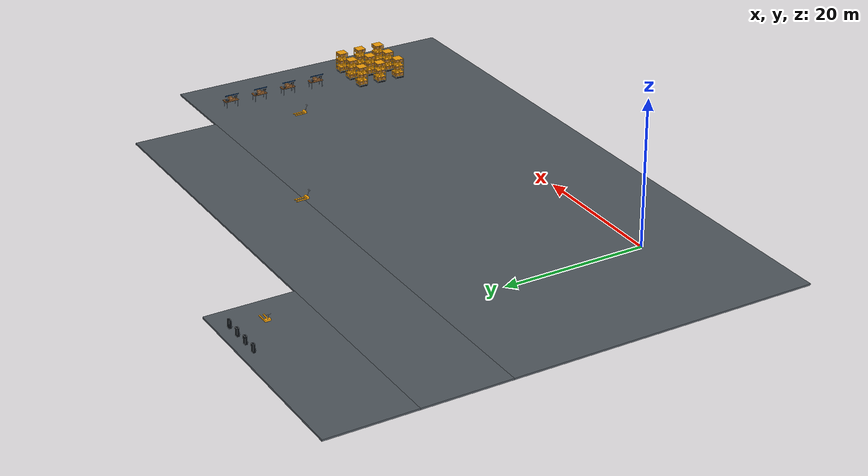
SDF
<sdf version="1.10">
 <world name="swarmroute_warehouse">
  <model name="warehouse_floor_0">
   <static>true</static>
   <link name="structure">
    <visual name="slab">
     <pose>27 9 -0.12 0 0 0</pose>
     <geometry><box><size>90 42 0.24</size></box></geometry>
     <material>
      <diffuse>0.32 0.35 0.38 1</diffuse>
      <ambient>0.224 0.245 0.266 1</ambient>
      <specular>.35 .4 .45 1</specular>
     </material>
    </visual>
    <collision name="slab_collision">
     <pose>27 9 -0.12 0 0 0</pose>
     <geometry><box><size>90 42 0.24</size></box></geometry>
    </collision>
   </link>
  </model>
  <model name="warehouse_floor_1">
   <static>true</static>
   <link name="structure">
    <visual name="slab">
     <pose>21 36 -0.12 0 0 0</pose>
     <geometry><box><size>78 12 0.24</size></box></geometry>
     <material>
      <diffuse>0.32 0.35 0.38 1</diffuse>
      <ambient>0.224 0.245 0.266 1</ambient>
      <specular>.35 .4 .45 1</specular>
     </material>
    </visual>
    <collision name="slab_collision">
     <pose>21 36 -0.12 0 0 0</pose>
     <geometry><box><size>78 12 0.24</size></box></geometry>
    </collision>
   </link>
  </model>
  <model name="warehouse_floor_2">
   <static>true</static>
   <link name="structure">
    <visual name="slab">
     <pose>-3 48 -0.12 0 0 0</pose>
     <geometry><box><size>30 12 0.24</size></box></geometry>
     <material>
      <diffuse>0.32 0.35 0.38 1</diffuse>
      <ambient>0.224 0.245 0.266 1</ambient>
      <specular>.35 .4 .45 1</specular>
     </material>
    </visual>
    <collision name="slab_collision">
     <pose>-3 48 -0.12 0 0 0</pose>
     <geometry><box><size>30 12 0.24</size></box></geometry>
    </collision>
   </link>
  </model>
  <include><uri>model://inventory_pod</uri><name>pod_0_0</name><pose>61.5 0 0 0 0 0</pose></include>
  <include><uri>model://inventory_pod</uri><name>pod_0_1</name><pose>61.5 3 0 0 0 0</pose></include>
  <include><uri>model://inventory_pod</uri><name>pod_0_2</name><pose>61.5 6 0 0 0 0</pose></include>
  <include><uri>model://inventory_pod</uri><name>pod_1_0</name><pose>64.5 0 0 0 0 0</pose></include>
  <include><uri>model://inventory_pod</uri><name>pod_1_1</name><pose>64.5 3 0 0 0 0</pose></include>
  <include><uri>model://inventory_pod</uri><name>pod_1_2</name><pose>64.5 6 0 0 0 0</pose></include>
  <include><uri>model://inventory_pod</uri><name>pod_2_0</name><pose>67.5 0 0 0 0 0</pose></include>
  <include><uri>model://inventory_pod</uri><name>pod_2_1</name><pose>67.5 3 0 0 0 0</pose></include>
  <include><uri>model://inventory_pod</uri><name>pod_2_2</name><pose>67.5 6 0 0 0 0</pose></include>
  <include><uri>model://packing_bench</uri><name>packing_0</name><pose>64.5 12 0 0 0 1.5708</pose></include>
  <include><uri>model://packing_bench</uri><name>packing_1</name><pose>64.5 16.5 0 0 0 1.5708</pose></include>
  <include><uri>model://packing_bench</uri><name>packing_2</name><pose>64.5 21 0 0 0 1.5708</pose></include>
  <include><uri>model://packing_bench</uri><name>packing_3</name><pose>64.5 25.5 0 0 0 1.5708</pose></include>
  <include><uri>model://charge_dock</uri><name>charger_09</name><pose>1.8 52.4 0 0 0 0</pose></include>
  <include><uri>model://charge_dock</uri><name>charger_10</name><pose>3.9 52.4 0 0 0 0</pose></include>
  <include><uri>model://charge_dock</uri><name>charger_11</name><pose>6 52.4 0 0 0 0</pose></include>
  <include><uri>model://charge_dock</uri><name>charger_12</name><pose>8.1 52.4 0 0 0 0</pose></include>
  <include><uri>model://pallet_jack</uri><name>service_jack</name><pose>7.5 48 0 0 0 0</pose></include>
  <include><uri>model://pallet_jack</uri><name>pallet_jack_1</name><pose>57 18 0 0 0 1.5708</pose></include>
  <include><uri>model://pallet_jack</uri><name>pallet_jack_2</name><pose>33 30 0 0 0 1.5708</pose></include>
 </world>
</sdf>
